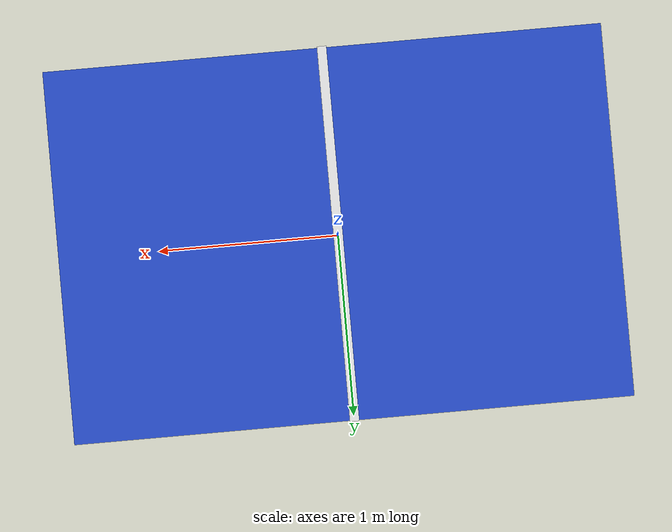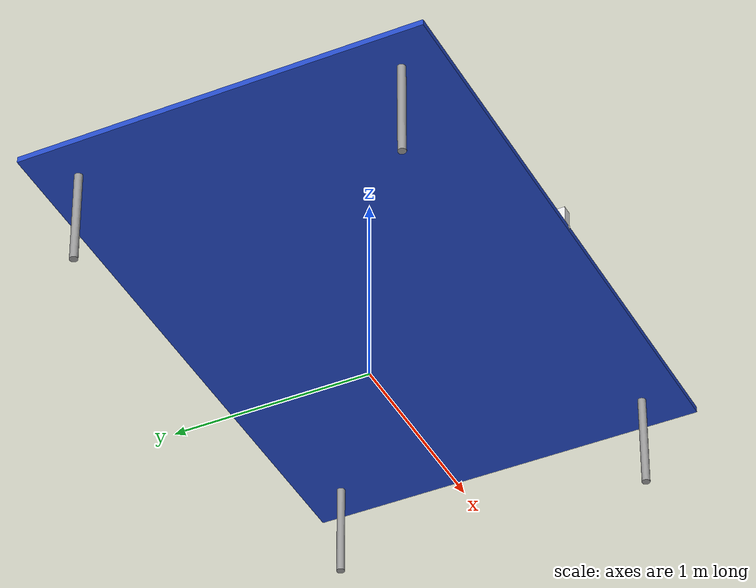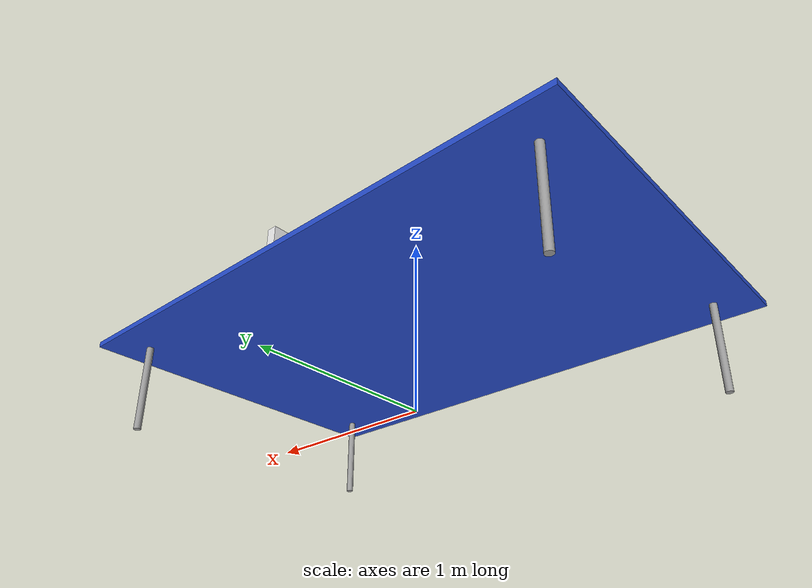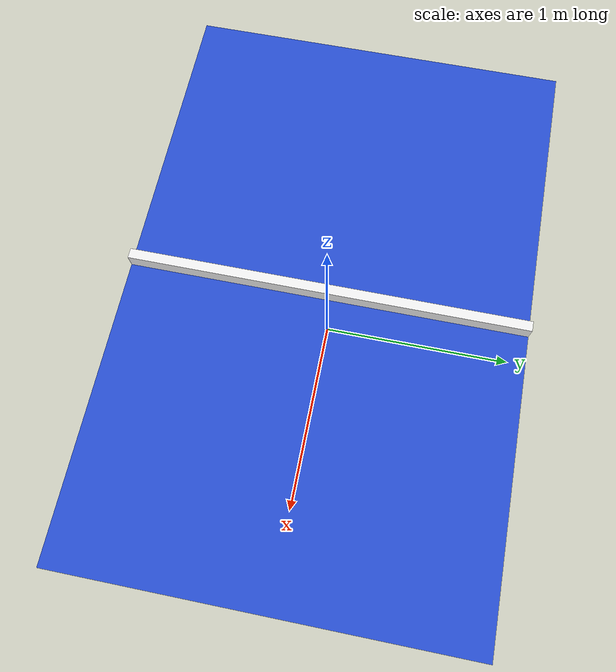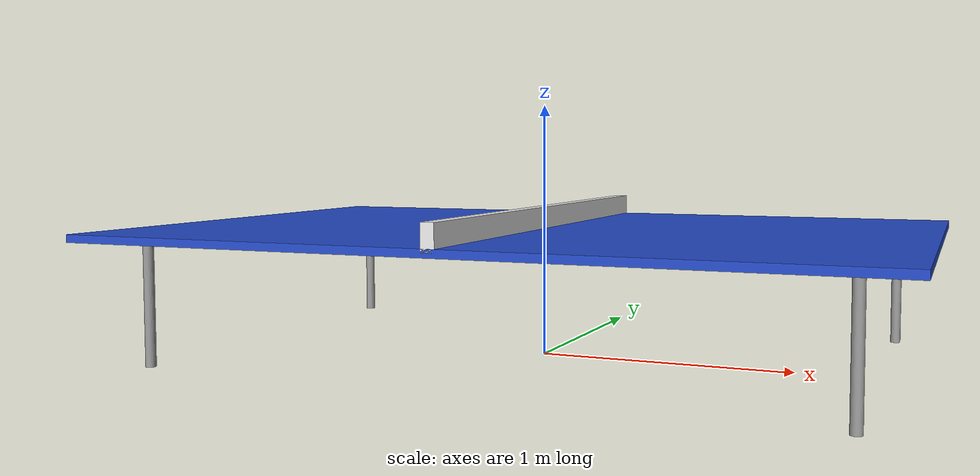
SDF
<?xml version="1.0" ?>
<sdf version="1.5">
  <model name="table">
    <static>true</static>
    <link name="link">
      <collision name="surface">
        <pose>0 0 .5 0 0 0</pose>
        <geometry>
          <box>
            <size>3.0 2.0 0.03</size>
          </box>
        </geometry>
        <surface>
          <bounce>
            <restitution_coefficient>1.0</restitution_coefficient>
            <threshold>0.01</threshold>
          </bounce>
          <friction>
            <ode>
              <mu>0.00</mu>
              <mu2>0.00</mu2>
            </ode>
          </friction>
        </surface>
      </collision>
      <visual name="visual1">
        <pose>0 0 .5 0 0 0</pose>
        <geometry>
          <box>
            <size>3.0 2.0 0.03</size>
          </box>
        </geometry>
        <material>
          <script>
            <uri>file://media/materials/scripts/gazebo.material</uri>
            <name>Gazebo/Blue</name>
          </script>
        </material>
      </visual>
      <collision name="net">
        <pose>0 0 .55 0 0 0</pose>
        <geometry>
          <box>
            <size>.05 1.0 .2</size>
          </box>
        </geometry>
      </collision>
      <visual name="net">
        <pose>0 0 .55 0 0 0</pose>
        <geometry>
          <box>
            <size>.05 2.0 .1</size>
          </box>
        </geometry>
        <material>
          <script>
            <uri>file://media/materials/scripts/gazebo.material</uri>
            <name>Gazebo/White</name>
          </script>
        </material>
      </visual>
      <collision name="front_left_leg">
        <pose>1.3 0.8 0.25 0 0 0</pose>
        <geometry>
          <cylinder>
            <radius>0.02</radius>
            <length>.5</length>
          </cylinder>
        </geometry>
      </collision>
      <visual name="front_left_leg">
        <pose>1.3 0.8 0.25 0 0 0</pose>
        <geometry>
          <cylinder>
            <radius>0.02</radius>
            <length>.5</length>
          </cylinder>
        </geometry>
        <material>
          <script>
            <uri>file://media/materials/scripts/gazebo.material</uri>
            <name>Gazebo/Grey</name>
          </script>
        </material>
      </visual>
      <collision name="front_right_leg">
        <pose>1.3 -0.8 0.25 0 0 0</pose>
        <geometry>
          <cylinder>
            <radius>0.02</radius>
            <length>.5</length>
          </cylinder>
        </geometry>
      </collision>
      <visual name="front_right_leg">
        <pose>1.3 -0.8 0.25 0 0 0</pose>
        <geometry>
          <cylinder>
            <radius>0.02</radius>
            <length>.5</length>
          </cylinder>
        </geometry>
        <material>
          <script>
            <uri>file://media/materials/scripts/gazebo.material</uri>
            <name>Gazebo/Grey</name>
          </script>
        </material>
      </visual>
      <collision name="back_right_leg">
        <pose>-1.3 -0.8 0.25 0 0 0</pose>
        <geometry>
          <cylinder>
            <radius>0.02</radius>
            <length>.5</length>
          </cylinder>
        </geometry>
      </collision>
      <visual name="back_right_leg">
        <pose>-1.3 -0.8 0.25 0 0 0</pose>
        <geometry>
          <cylinder>
            <radius>0.02</radius>
            <length>.5</length>
          </cylinder>
        </geometry>
        <material>
          <script>
            <uri>file://media/materials/scripts/gazebo.material</uri>
            <name>Gazebo/Grey</name>
          </script>
        </material>
      </visual>
      <collision name="back_left_leg">
        <pose>-1.3 0.8 0.25 0 0 0</pose>
        <geometry>
          <cylinder>
            <radius>0.02</radius>
            <length>.5</length>
          </cylinder>
        </geometry>
      </collision>
      <visual name="back_left_leg">
        <pose>-1.3 0.8 0.25 0 0 0</pose>
        <geometry>
          <cylinder>
            <radius>0.02</radius>
            <length>.5</length>
          </cylinder>
        </geometry>
        <material>
          <script>
            <uri>file://media/materials/scripts/gazebo.material</uri>
            <name>Gazebo/Grey</name>
          </script>
        </material>
      </visual>
    </link>
  </model>
</sdf>
